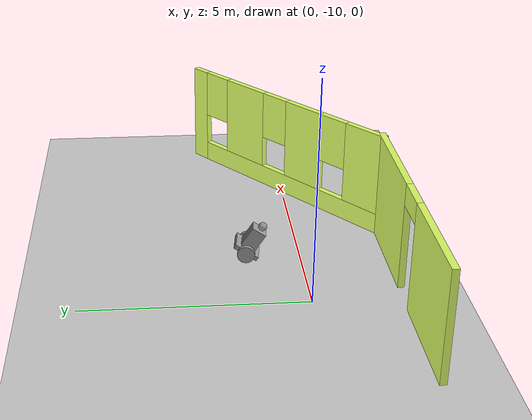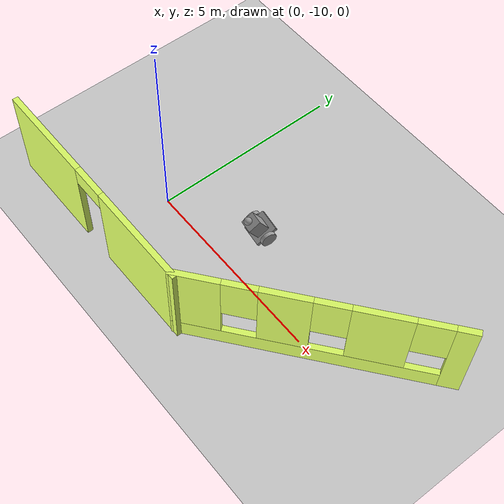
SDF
<sdf version="1.6">
 <world name="default">
  <model name="ground_plane">
   <static>1</static>
   <link name="link">
    <collision name="collision">
     <geometry><plane><normal>0 0 1</normal><size>100 100</size></plane></geometry>
     <surface>
      <contact><collide_bitmask>65535</collide_bitmask></contact>
      <friction><ode><mu>100</mu><mu2>50</mu2></ode></friction>
     </surface>
    </collision>
    <visual name="visual">
     <cast_shadows>0</cast_shadows>
     <geometry><plane><normal>0 0 1</normal><size>100 100</size></plane></geometry>
     <material>
      <script><uri>file://media/materials/scripts/gazebo.material</uri><name>Gazebo/Grey</name></script>
     </material>
    </visual>
   </link>
  </model>
  <model name="myBuilding">
   <pose>-0.01524 -2.0117 0 0 -0 0</pose>
   <link name="Wall_10">
    <pose>5.51524 -7.9883 0 0 0 -2.46685</pose>
    <visual name="Wall_10_Visual_0">
     <pose>-3.02719 0 1.25 0 -0 0</pose>
     <geometry><box><size>0.498745 0.15 2.5</size></box></geometry>
     <material>
      <script><uri>file://media/materials/scripts/gazebo.material</uri><name>Gazebo/Grey</name></script>
      <ambient>0.870588 1 0.4 1</ambient>
     </material>
     <meta><layer>0</layer></meta>
    </visual>
    <collision name="Wall_10_Collision_0">
     <geometry><box><size>0.498745 0.15 2.5</size></box></geometry>
     <pose>-3.02719 0 1.25 0 -0 0</pose>
    </collision>
    <visual name="Wall_10_Visual_1">
     <pose>0.249372 0 0.25 0 -0 0</pose>
     <geometry><box><size>6.05438 0.15 0.5</size></box></geometry>
     <material>
      <script><uri>file://media/materials/scripts/gazebo.material</uri><name>Gazebo/Grey</name></script>
      <ambient>0.870588 1 0.4 1</ambient>
     </material>
     <meta><layer>0</layer></meta>
    </visual>
    <collision name="Wall_10_Collision_1">
     <geometry><box><size>6.05438 0.15 0.5</size></box></geometry>
     <pose>0.249372 0 0.25 0 -0 0</pose>
    </collision>
    <visual name="Wall_10_Visual_2">
     <pose>-1.31246 0 1.5 0 -0 0</pose>
     <geometry><box><size>1.33072 0.15 2</size></box></geometry>
     <material>
      <script><uri>file://media/materials/scripts/gazebo.material</uri><name>Gazebo/Grey</name></script>
      <ambient>0.870588 1 0.4 1</ambient>
     </material>
     <meta><layer>0</layer></meta>
    </visual>
    <collision name="Wall_10_Collision_2">
     <geometry><box><size>1.33072 0.15 2</size></box></geometry>
     <pose>-1.31246 0 1.5 0 -0 0</pose>
    </collision>
    <visual name="Wall_10_Visual_3">
     <pose>0.732264 0 1.5 0 -0 0</pose>
     <geometry><box><size>1.15873 0.15 2</size></box></geometry>
     <material>
      <script><uri>file://media/materials/scripts/gazebo.material</uri><name>Gazebo/Grey</name></script>
      <ambient>0.870588 1 0.4 1</ambient>
     </material>
     <meta><layer>0</layer></meta>
    </visual>
    <collision name="Wall_10_Collision_3">
     <geometry><box><size>1.15873 0.15 2</size></box></geometry>
     <pose>0.732264 0 1.5 0 -0 0</pose>
    </collision>
    <visual name="Wall_10_Visual_4">
     <pose>2.6941 0 1.5 0 -0 0</pose>
     <geometry><box><size>1.16493 0.15 2</size></box></geometry>
     <material>
      <script><uri>file://media/materials/scripts/gazebo.material</uri><name>Gazebo/Grey</name></script>
      <ambient>0.870588 1 0.4 1</ambient>
     </material>
     <meta><layer>0</layer></meta>
    </visual>
    <collision name="Wall_10_Collision_4">
     <geometry><box><size>1.16493 0.15 2</size></box></geometry>
     <pose>2.6941 0 1.5 0 -0 0</pose>
    </collision>
    <visual name="Wall_10_Visual_5">
     <pose>-2.37782 0 1.9 0 -0 0</pose>
     <geometry><box><size>0.8 0.15 1.2</size></box></geometry>
     <material>
      <script><uri>file://media/materials/scripts/gazebo.material</uri><name>Gazebo/Grey</name></script>
      <ambient>0.870588 1 0.4 1</ambient>
     </material>
     <meta><layer>0</layer></meta>
    </visual>
    <collision name="Wall_10_Collision_5">
     <geometry><box><size>0.8 0.15 1.2</size></box></geometry>
     <pose>-2.37782 0 1.9 0 -0 0</pose>
    </collision>
    <visual name="Wall_10_Visual_6">
     <pose>-0.247101 0 1.9 0 -0 0</pose>
     <geometry><box><size>0.8 0.15 1.2</size></box></geometry>
     <material>
      <script><uri>file://media/materials/scripts/gazebo.material</uri><name>Gazebo/Grey</name></script>
      <ambient>0.870588 1 0.4 1</ambient>
     </material>
     <meta><layer>0</layer></meta>
    </visual>
    <collision name="Wall_10_Collision_6">
     <geometry><box><size>0.8 0.15 1.2</size></box></geometry>
     <pose>-0.247101 0 1.9 0 -0 0</pose>
    </collision>
    <visual name="Wall_10_Visual_7">
     <pose>1.71163 0 1.9 0 -0 0</pose>
     <geometry><box><size>0.8 0.15 1.2</size></box></geometry>
     <material>
      <script><uri>file://media/materials/scripts/gazebo.material</uri><name>Gazebo/Grey</name></script>
      <ambient>0.870588 1 0.4 1</ambient>
     </material>
     <meta><layer>0</layer></meta>
    </visual>
    <collision name="Wall_10_Collision_7">
     <geometry><box><size>0.8 0.15 1.2</size></box></geometry>
     <pose>1.71163 0 1.9 0 -0 0</pose>
    </collision>
   </link>
   <link name="Wall_12">
    <pose>0.065237 -9.9883 0 0 -0 0</pose>
    <visual name="Wall_12_Visual_0">
     <pose>-1.8125 0 1.25 0 -0 0</pose>
     <geometry><box><size>2.625 0.15 2.5</size></box></geometry>
     <material>
      <script><uri>file://media/materials/scripts/gazebo.material</uri><name>Gazebo/Grey</name></script>
      <ambient>0.870588 1 0.4 1</ambient>
     </material>
     <meta><layer>0</layer></meta>
    </visual>
    <collision name="Wall_12_Collision_0">
     <geometry><box><size>2.625 0.15 2.5</size></box></geometry>
     <pose>-1.8125 0 1.25 0 -0 0</pose>
    </collision>
    <visual name="Wall_12_Visual_1">
     <pose>1.7625 0 1.25 0 -0 0</pose>
     <geometry><box><size>2.725 0.15 2.5</size></box></geometry>
     <material>
      <script><uri>file://media/materials/scripts/gazebo.material</uri><name>Gazebo/Grey</name></script>
      <ambient>0.870588 1 0.4 1</ambient>
     </material>
     <meta><layer>0</layer></meta>
    </visual>
    <collision name="Wall_12_Collision_1">
     <geometry><box><size>2.725 0.15 2.5</size></box></geometry>
     <pose>1.7625 0 1.25 0 -0 0</pose>
    </collision>
    <visual name="Wall_12_Visual_2">
     <pose>-0.05 0 2.25 0 -0 0</pose>
     <geometry><box><size>0.9 0.15 0.5</size></box></geometry>
     <material>
      <script><uri>file://media/materials/scripts/gazebo.material</uri><name>Gazebo/Grey</name></script>
      <ambient>0.870588 1 0.4 1</ambient>
     </material>
     <meta><layer>0</layer></meta>
    </visual>
    <collision name="Wall_12_Collision_2">
     <geometry><box><size>0.9 0.15 0.5</size></box></geometry>
     <pose>-0.05 0 2.25 0 -0 0</pose>
    </collision>
   </link>
   <static>1</static>
  </model>
  <model name="serviceRobot_clone_clone">
   <link name="link_1">
    <pose>-0.266493 0.05477 -0.125 0 -0 0</pose>
    <inertial>
     <mass>1</mass>
     <inertia>
      <ixx>0.166667</ixx>
      <ixy>0</ixy>
      <ixz>0</ixz>
      <iyy>0.166667</iyy>
      <iyz>0</iyz>
      <izz>0.166667</izz>
     </inertia>
    </inertial>
    <visual name="visual">
     <geometry><box><size>0.6 0.6 0.1</size></box></geometry>
     <material>
      <lighting>1</lighting>
      <script><uri>file://media/materials/scripts/gazebo.material</uri><name>Gazebo/Grey</name></script>
      <shader type="pixel"><normal_map>__default__</normal_map></shader>
      <ambient>0.3 0.3 0.3 1</ambient>
      <diffuse>0.7 0.7 0.7 1</diffuse>
      <specular>0.01 0.01 0.01 1</specular>
      <emissive>0 0 0 1</emissive>
     </material>
    </visual>
    <collision name="collision">
     <geometry><box><size>0.6 0.6 0.1</size></box></geometry>
     <surface>
      <friction>
       <ode><mu>1</mu><mu2>1</mu2><fdir1>0 0 0</fdir1><slip1>0</slip1><slip2>0</slip2></ode>
       <torsional>
        <coefficient>1</coefficient>
        <patch_radius>0</patch_radius>
        <surface_radius>0</surface_radius>
        <use_patch_radius>1</use_patch_radius>
        <ode><slip>0</slip></ode>
       </torsional>
      </friction>
      <bounce><restitution_coefficient>0</restitution_coefficient><threshold>1e+06</threshold></bounce>
      <contact>
       <collide_without_contact>0</collide_without_contact>
       <collide_without_contact_bitmask>1</collide_without_contact_bitmask>
       <collide_bitmask>1</collide_bitmask>
       <ode>
        <soft_cfm>0</soft_cfm>
        <soft_erp>0.2</soft_erp>
        <kp>1e+13</kp>
        <kd>1</kd>
        <max_vel>0.01</max_vel>
        <min_depth>0</min_depth>
       </ode>
       <bullet>
        <split_impulse>1</split_impulse>
        <split_impulse_penetration_threshold>-0.01</split_impulse_penetration_threshold>
        <soft_cfm>0</soft_cfm>
        <soft_erp>0.2</soft_erp>
        <kp>1e+13</kp>
        <kd>1</kd>
       </bullet>
      </contact>
     </surface>
    </collision>
   </link>
   <link name="link_2">
    <pose>0.084348 0.05477 -0.125 3.14159 1.56659 3.14159</pose>
    <inertial>
     <mass>1</mass>
     <inertia><ixx>0.145833</ixx><ixy>0</ixy><ixz>0</ixz><iyy>0.145833</iyy><iyz>0</iyz><izz>0.125</izz></inertia>
    </inertial>
    <visual name="visual">
     <geometry><cylinder><radius>0.2</radius><length>0.1</length></cylinder></geometry>
     <material>
      <lighting>1</lighting>
      <script><uri>file://media/materials/scripts/gazebo.material</uri><name>Gazebo/Grey</name></script>
      <shader type="pixel"><normal_map>__default__</normal_map></shader>
      <ambient>0.3 0.3 0.3 1</ambient>
      <diffuse>0.7 0.7 0.7 1</diffuse>
      <specular>0.01 0.01 0.01 1</specular>
      <emissive>0 0 0 1</emissive>
     </material>
    </visual>
    <collision name="collision">
     <geometry><cylinder><radius>0.2</radius><length>0.1</length></cylinder></geometry>
     <surface>
      <friction>
       <ode><mu>1</mu><mu2>1</mu2><fdir1>0 0 0</fdir1><slip1>0</slip1><slip2>0</slip2></ode>
       <torsional>
        <coefficient>1</coefficient>
        <patch_radius>0</patch_radius>
        <surface_radius>0</surface_radius>
        <use_patch_radius>1</use_patch_radius>
        <ode><slip>0</slip></ode>
       </torsional>
      </friction>
      <bounce><restitution_coefficient>0</restitution_coefficient><threshold>1e+06</threshold></bounce>
      <contact>
       <collide_without_contact>0</collide_without_contact>
       <collide_without_contact_bitmask>1</collide_without_contact_bitmask>
       <collide_bitmask>1</collide_bitmask>
       <ode>
        <soft_cfm>0</soft_cfm>
        <soft_erp>0.2</soft_erp>
        <kp>1e+13</kp>
        <kd>1</kd>
        <max_vel>0.01</max_vel>
        <min_depth>0</min_depth>
       </ode>
       <bullet>
        <split_impulse>1</split_impulse>
        <split_impulse_penetration_threshold>-0.01</split_impulse_penetration_threshold>
        <soft_cfm>0</soft_cfm>
        <soft_erp>0.2</soft_erp>
        <kp>1e+13</kp>
        <kd>1</kd>
       </bullet>
      </contact>
     </surface>
    </collision>
   </link>
   <link name="link_2_clone">
    <pose>-0.617334 0.05477 -0.125 3.14159 1.56659 3.14159</pose>
    <inertial>
     <mass>1</mass>
     <inertia><ixx>0.145833</ixx><ixy>0</ixy><ixz>0</ixz><iyy>0.145833</iyy><iyz>0</iyz><izz>0.125</izz></inertia>
    </inertial>
    <visual name="visual">
     <geometry><cylinder><radius>0.2</radius><length>0.1</length></cylinder></geometry>
     <material>
      <lighting>1</lighting>
      <script><uri>file://media/materials/scripts/gazebo.material</uri><name>Gazebo/Grey</name></script>
      <shader type="pixel"><normal_map>__default__</normal_map></shader>
      <ambient>0.3 0.3 0.3 1</ambient>
      <diffuse>0.7 0.7 0.7 1</diffuse>
      <specular>0.01 0.01 0.01 1</specular>
      <emissive>0 0 0 1</emissive>
     </material>
    </visual>
    <collision name="collision">
     <geometry><cylinder><radius>0.2</radius><length>0.1</length></cylinder></geometry>
     <surface>
      <friction>
       <ode><mu>1</mu><mu2>1</mu2><fdir1>0 0 0</fdir1><slip1>0</slip1><slip2>0</slip2></ode>
       <torsional>
        <coefficient>1</coefficient>
        <patch_radius>0</patch_radius>
        <surface_radius>0</surface_radius>
        <use_patch_radius>1</use_patch_radius>
        <ode><slip>0</slip></ode>
       </torsional>
      </friction>
      <bounce><restitution_coefficient>0</restitution_coefficient><threshold>1e+06</threshold></bounce>
      <contact>
       <collide_without_contact>0</collide_without_contact>
       <collide_without_contact_bitmask>1</collide_without_contact_bitmask>
       <collide_bitmask>1</collide_bitmask>
       <ode>
        <soft_cfm>0</soft_cfm>
        <soft_erp>0.2</soft_erp>
        <kp>1e+13</kp>
        <kd>1</kd>
        <max_vel>0.01</max_vel>
        <min_depth>0</min_depth>
       </ode>
       <bullet>
        <split_impulse>1</split_impulse>
        <split_impulse_penetration_threshold>-0.01</split_impulse_penetration_threshold>
        <soft_cfm>0</soft_cfm>
        <soft_erp>0.2</soft_erp>
        <kp>1e+13</kp>
        <kd>1</kd>
       </bullet>
      </contact>
     </surface>
    </collision>
   </link>
   <link name="link_3">
    <pose>-0.266493 0.05477 0.175 0 -0 0</pose>
    <inertial>
     <mass>1</mass>
     <inertia>
      <ixx>0.166667</ixx>
      <ixy>0</ixy>
      <ixz>0</ixz>
      <iyy>0.166667</iyy>
      <iyz>0</iyz>
      <izz>0.166667</izz>
     </inertia>
    </inertial>
    <visual name="visual">
     <geometry><box><size>0.35 0.35 0.5</size></box></geometry>
     <material>
      <lighting>1</lighting>
      <script><uri>file://media/materials/scripts/gazebo.material</uri><name>Gazebo/Grey</name></script>
      <shader type="pixel"><normal_map>__default__</normal_map></shader>
      <ambient>0.3 0.3 0.3 1</ambient>
      <diffuse>0.7 0.7 0.7 1</diffuse>
      <specular>0.01 0.01 0.01 1</specular>
      <emissive>0 0 0 1</emissive>
     </material>
    </visual>
    <collision name="collision">
     <geometry><box><size>0.35 0.35 0.5</size></box></geometry>
     <surface>
      <friction>
       <ode><mu>1</mu><mu2>1</mu2><fdir1>0 0 0</fdir1><slip1>0</slip1><slip2>0</slip2></ode>
       <torsional>
        <coefficient>1</coefficient>
        <patch_radius>0</patch_radius>
        <surface_radius>0</surface_radius>
        <use_patch_radius>1</use_patch_radius>
        <ode><slip>0</slip></ode>
       </torsional>
      </friction>
      <bounce><restitution_coefficient>0</restitution_coefficient><threshold>1e+06</threshold></bounce>
      <contact>
       <collide_without_contact>0</collide_without_contact>
       <collide_without_contact_bitmask>1</collide_without_contact_bitmask>
       <collide_bitmask>1</collide_bitmask>
       <ode>
        <soft_cfm>0</soft_cfm>
        <soft_erp>0.2</soft_erp>
        <kp>1e+13</kp>
        <kd>1</kd>
        <max_vel>0.01</max_vel>
        <min_depth>0</min_depth>
       </ode>
       <bullet>
        <split_impulse>1</split_impulse>
        <split_impulse_penetration_threshold>-0.01</split_impulse_penetration_threshold>
        <soft_cfm>0</soft_cfm>
        <soft_erp>0.2</soft_erp>
        <kp>1e+13</kp>
        <kd>1</kd>
       </bullet>
      </contact>
     </surface>
    </collision>
   </link>
   <link name="link_4">
    <pose>-0.286493 0.03477 0.525 0 -0 0</pose>
    <inertial>
     <mass>1</mass>
     <inertia><ixx>0.1</ixx><ixy>0</ixy><ixz>0</ixz><iyy>0.1</iyy><iyz>0</iyz><izz>0.1</izz></inertia>
    </inertial>
    <visual name="visual">
     <geometry><sphere><radius>0.1</radius></sphere></geometry>
     <material>
      <lighting>1</lighting>
      <script><uri>file://media/materials/scripts/gazebo.material</uri><name>Gazebo/Grey</name></script>
      <shader type="pixel"><normal_map>__default__</normal_map></shader>
      <ambient>0.3 0.3 0.3 1</ambient>
      <diffuse>0.7 0.7 0.7 1</diffuse>
      <specular>0.01 0.01 0.01 1</specular>
      <emissive>0 0 0 1</emissive>
     </material>
    </visual>
    <collision name="collision">
     <geometry><sphere><radius>0.1</radius></sphere></geometry>
     <surface>
      <friction>
       <ode><mu>1</mu><mu2>1</mu2><fdir1>0 0 0</fdir1><slip1>0</slip1><slip2>0</slip2></ode>
       <torsional>
        <coefficient>1</coefficient>
        <patch_radius>0</patch_radius>
        <surface_radius>0</surface_radius>
        <use_patch_radius>1</use_patch_radius>
        <ode><slip>0</slip></ode>
       </torsional>
      </friction>
      <bounce><restitution_coefficient>0</restitution_coefficient><threshold>1e+06</threshold></bounce>
      <contact>
       <collide_without_contact>0</collide_without_contact>
       <collide_without_contact_bitmask>1</collide_without_contact_bitmask>
       <collide_bitmask>1</collide_bitmask>
       <ode>
        <soft_cfm>0</soft_cfm>
        <soft_erp>0.2</soft_erp>
        <kp>1e+13</kp>
        <kd>1</kd>
        <max_vel>0.01</max_vel>
        <min_depth>0</min_depth>
       </ode>
       <bullet>
        <split_impulse>1</split_impulse>
        <split_impulse_penetration_threshold>-0.01</split_impulse_penetration_threshold>
        <soft_cfm>0</soft_cfm>
        <soft_erp>0.2</soft_erp>
        <kp>1e+13</kp>
        <kd>1</kd>
       </bullet>
      </contact>
     </surface>
    </collision>
   </link>
   <model name="metal_peg">
    <link name="link">
     <pose>0 0 0.031 0 -0 0</pose>
     <inertial>
      <mass>0.0121</mass>
      <inertia>
       <ixx>3.90898e-06</ixx>
       <ixy>0</ixy>
       <ixz>0</ixz>
       <iyy>3.90898e-06</iyy>
       <iyz>0</iyz>
       <izz>6.58845e-08</izz>
      </inertia>
     </inertial>
     <collision name="collision">
      <geometry><cylinder><radius>0.0033</radius><length>0.062</length></cylinder></geometry>
      <surface>
       <contact>
        <poissons_ratio>0.305</poissons_ratio>
        <elastic_modulus>2e+11</elastic_modulus>
        <ode><kp>100000</kp><kd>100</kd><max_vel>100</max_vel><min_depth>0.001</min_depth></ode>
       </contact>
       <friction>
        <torsional>
         <coefficient>1</coefficient>
         <use_patch_radius>0</use_patch_radius>
         <surface_radius>0.01</surface_radius>
        </torsional>
       </friction>
      </surface>
     </collision>
     <visual name="visual">
      <geometry><cylinder><radius>0.0033</radius><length>0.062</length></cylinder></geometry>
      <material>
       <script><uri>file://media/materials/scripts/gazebo.material</uri><name>Gazebo/Grey</name></script>
      </material>
     </visual>
    </link>
    <pose>1.41901 -0.439429 -0.325 0 -0 0</pose>
   </model>
   <joint name="link_1_JOINT_0" type="revolute">
    <parent>link_1</parent>
    <child>link_2_clone</child>
    <axis>
     <xyz>0 0 1</xyz>
     <use_parent_model_frame>0</use_parent_model_frame>
     <limit>
      <lower>-1.79769e+308</lower>
      <upper>1.79769e+308</upper>
      <effort>-1</effort>
      <velocity>-1</velocity>
     </limit>
     <dynamics>
      <spring_reference>0</spring_reference>
      <spring_stiffness>0</spring_stiffness>
      <damping>0</damping>
     </dynamics>
    </axis>
    <physics>
     <ode><limit><cfm>0</cfm><erp>0.2</erp></limit><suspension><cfm>0</cfm><erp>0.2</erp></suspension></ode>
    </physics>
   </joint>
   <joint name="link_1_JOINT_1" type="revolute">
    <parent>link_1</parent>
    <child>link_2</child>
    <axis>
     <xyz>0 0 1</xyz>
     <use_parent_model_frame>0</use_parent_model_frame>
     <limit>
      <lower>-1.79769e+308</lower>
      <upper>1.79769e+308</upper>
      <effort>-1</effort>
      <velocity>-1</velocity>
     </limit>
     <dynamics>
      <spring_reference>0</spring_reference>
      <spring_stiffness>0</spring_stiffness>
      <damping>0</damping>
     </dynamics>
    </axis>
    <physics>
     <ode><limit><cfm>0</cfm><erp>0.2</erp></limit><suspension><cfm>0</cfm><erp>0.2</erp></suspension></ode>
    </physics>
   </joint>
   <joint name="link_1_JOINT_2" type="fixed">
    <parent>link_1</parent>
    <child>link_3</child>
    <physics>
     <ode><limit><cfm>0</cfm><erp>0.2</erp></limit><suspension><cfm>0</cfm><erp>0.2</erp></suspension></ode>
    </physics>
   </joint>
   <joint name="link_3_JOINT_3" type="fixed">
    <parent>link_3</parent>
    <child>link_4</child>
    <physics>
     <ode><limit><cfm>0</cfm><erp>0.2</erp></limit><suspension><cfm>0</cfm><erp>0.2</erp></suspension></ode>
    </physics>
   </joint>
   <static>0</static>
   <pose>2.40347 -8.94102 0.277752 0.55325 -1e-06 -0.13415</pose>
  </model>
 </world>
</sdf>
